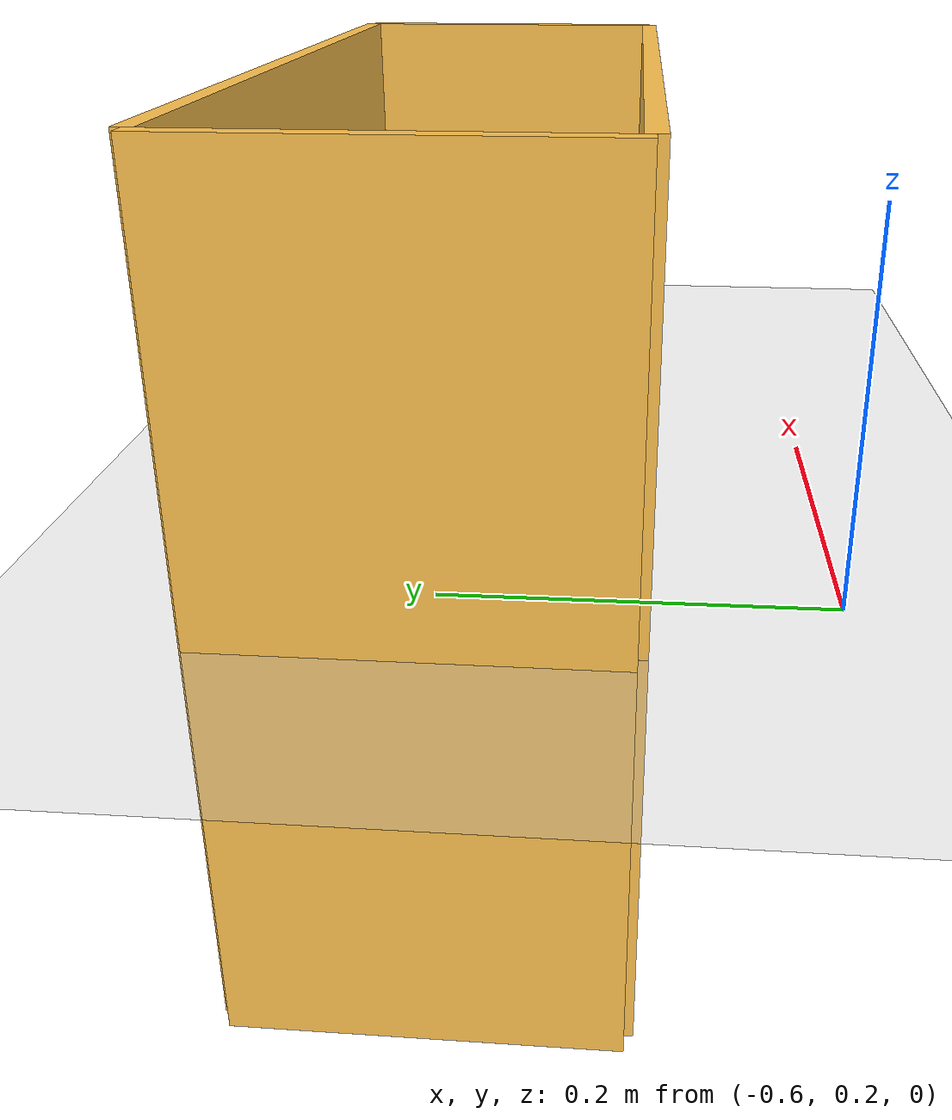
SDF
<?xml version="1.0" ?>
<sdf version="1.4">
  <world name="default">

    <gui>
      <camera name="gzclient_camera">
        <pose>0.882477 0.401259 1.075404 0 0.664 -2.839185</pose>
      </camera>
    </gui>

    <include>
      <uri>model://ground_plane</uri>
    </include>
    <include>
      <uri>model://sun</uri>
    </include>

    <physics type='ode'>
      <max_step_size>0.001</max_step_size>
      <real_time_factor>1</real_time_factor>
      <real_time_update_rate>1000</real_time_update_rate>
      <gravity>0 0 -9.8</gravity>
    </physics>

    <include>
      <uri>/home/karldhri/catkin_ws/src/Project-Laboratory/gazebo_model/target_bin</uri>
      <pose>-0.419664 0.4 0 0 0 0</pose>
      <static>true</static>
    </include>

    <include>
      <uri>/home/karldhri/catkin_ws/src/Project-Laboratory/gazebo_model/wall</uri>
      <pose>-0.4 0.3 0 0 0 0</pose>
      <static>true</static>
    </include>

    <include>
      <uri>/home/karldhri/catkin_ws/src/Project-Laboratory/gazebo_model/wall</uri>
      <pose>-0.4 0.51 0 0 0 0</pose>
      <static>true</static>
    </include>

    <include>
      <uri>/home/karldhri/catkin_ws/src/Project-Laboratory/gazebo_model/wall_short</uri>
      <pose>-0.145 0.405 0 0 0 1.5707963</pose>
      <static>true</static>
    </include>

    <include>
      <uri>/home/karldhri/catkin_ws/src/Project-Laboratory/gazebo_model/wall_short</uri>
      <pose>-0.655 0.405 0 0 0 1.5707963</pose>
      <static>true</static>
    </include>

  </world>
</sdf>

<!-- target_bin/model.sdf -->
<sdf version='1.6'>
  <model name='target_bin'>
    <link name='link_0'>
      <inertial>
        <mass>1</mass>
        <inertia>
          <ixx>0.145833</ixx>
          <ixy>0</ixy>
          <ixz>0</ixz>
          <iyy>0.145833</iyy>
          <iyz>0</iyz>
          <izz>0.125</izz>
        </inertia>
        <pose frame=''>0 0 0 0 -0 0</pose>
      </inertial>
      <pose frame=''>-0 -0 0 0 -0 0</pose>
      <gravity>1</gravity>
      <self_collide>0</self_collide>
      <kinematic>0</kinematic>
      <enable_wind>0</enable_wind>
      <visual name='visual'>
        <pose frame=''>0 0 0 0 -0 0</pose>
        <geometry>
          <cylinder>
            <radius>0.05</radius>
            <length>0.20</length>
          </cylinder>
        </geometry>
        <material>
          <lighting>1</lighting>
          <script>
            <uri>file://media/materials/scripts/gazebo.material</uri>
            <name>Gazebo/Grey</name>
          </script>
          <shader type='vertex'>
            <normal_map>__default__</normal_map>
          </shader>
          <ambient>1 0.3 0.3 1</ambient>
          <diffuse>0.9 0.7 0.7 1</diffuse>
          <specular>0.01 0.01 0.01 1</specular>
          <emissive>0 0 0 1</emissive>
        </material>
        <transparency>0</transparency>
        <cast_shadows>1</cast_shadows>
      </visual>
      <collision name='collision'>
        <laser_retro>0</laser_retro>
        <max_contacts>10</max_contacts>
        <pose frame=''>0 0 0 0 -0 0</pose>
        <geometry>
          <cylinder>
            <radius>0.05</radius>
            <length>0.05</length>
          </cylinder>
        </geometry>
        <surface>
          <friction>
            <ode>
              <mu>1</mu>
              <mu2>1</mu2>
              <fdir1>0 0 0</fdir1>
              <slip1>0</slip1>
              <slip2>0</slip2>
            </ode>
            <torsional>
              <coefficient>1</coefficient>
              <patch_radius>0</patch_radius>
              <surface_radius>0</surface_radius>
              <use_patch_radius>1</use_patch_radius>
              <ode>
                <slip>0</slip>
              </ode>
            </torsional>
          </friction>
          <bounce>
            <restitution_coefficient>0</restitution_coefficient>
            <threshold>1e+06</threshold>
          </bounce>
          <contact>
            <collide_without_contact>0</collide_without_contact>
            <collide_without_contact_bitmask>1</collide_without_contact_bitmask>
            <collide_bitmask>1</collide_bitmask>
            <ode>
              <soft_cfm>0</soft_cfm>
              <soft_erp>0.2</soft_erp>
              <kp>1e+13</kp>
              <kd>1</kd>
              <max_vel>0.01</max_vel>
              <min_depth>0</min_depth>
            </ode>
            <bullet>
              <split_impulse>1</split_impulse>
              <split_impulse_penetration_threshold>-0.01</split_impulse_penetration_threshold>
              <soft_cfm>0</soft_cfm>
              <soft_erp>0.2</soft_erp>
              <kp>1e+13</kp>
              <kd>1</kd>
            </bullet>
          </contact>
        </surface>
      </collision>
    </link>
    <static>0</static>
    <allow_auto_disable>1</allow_auto_disable>
  </model>
</sdf>

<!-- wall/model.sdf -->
<sdf version='1.6'>
  <model name='wall'>
    <pose frame=''>-1.40276 -7.28046 0 0 -0 0</pose>
    <link name='Wall_28'>
      <collision name='Wall_28_Collision'>
        <geometry>
          <box>
            <size>0.5 0.01 0.47</size>
          </box>
        </geometry>
        <pose frame=''>0 0 0 0 -0 0</pose>
      </collision>
      <visual name='Wall_28_Visual'>
        <pose frame=''>0 0 0 0 -0 0</pose>
        <geometry>
          <box>
            <size>0.5 0.01 0.47</size>
          </box>
        </geometry>
        <material>
          <script>
            <uri>file://media/materials/scripts/gazebo.material</uri>
            <name>Gazebo/Grey</name>
          </script>
          <ambient>1 0.764706 0.305882 1</ambient>
        </material>
        <meta>
          <layer>0</layer>
        </meta>
      </visual>
      <pose frame=''>0 0 0 0 -0 0</pose>
    </link>
    <static>1</static>
  </model>
</sdf>

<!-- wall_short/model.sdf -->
<sdf version='1.6'>
  <model name='wall_short'>
    <pose frame=''>-1.40276 -7.28046 0 0 -0 0</pose>
    <link name='Wall_28'>
      <collision name='Wall_28_Collision'>
        <geometry>
          <box>
            <size>0.21 0.003 0.47</size>
          </box>
        </geometry>
        <pose frame=''>0 0 0 0 -0 0</pose>
      </collision>
      <visual name='Wall_28_Visual'>
        <pose frame=''>0 0 0 0 -0 0</pose>
        <geometry>
          <box>
            <size>0.21 0.01 0.47</size>
          </box>
        </geometry>
        <material>
          <script>
            <uri>file://media/materials/scripts/gazebo.material</uri>
            <name>Gazebo/Grey</name>
          </script>
          <ambient>1 0.764706 0.305882 1</ambient>
        </material>
        <meta>
          <layer>0</layer>
        </meta>
      </visual>
      <pose frame=''>0 0 0 0 -0 0</pose>
    </link>
    <static>1</static>
  </model>
</sdf>
